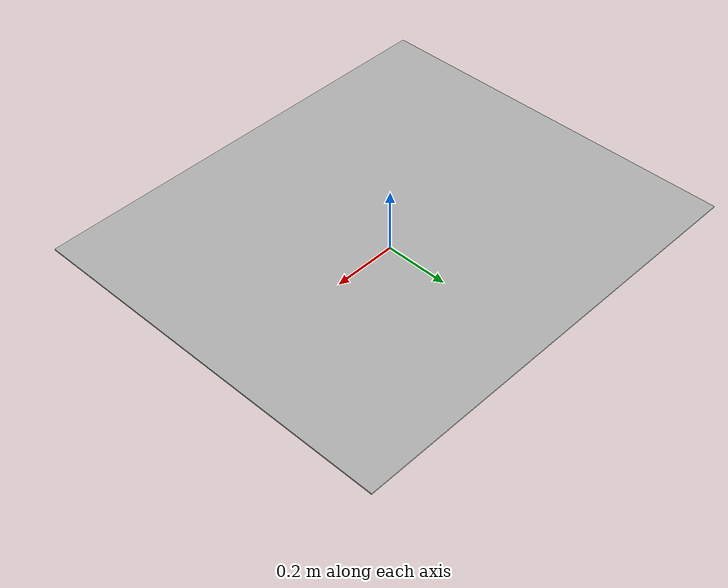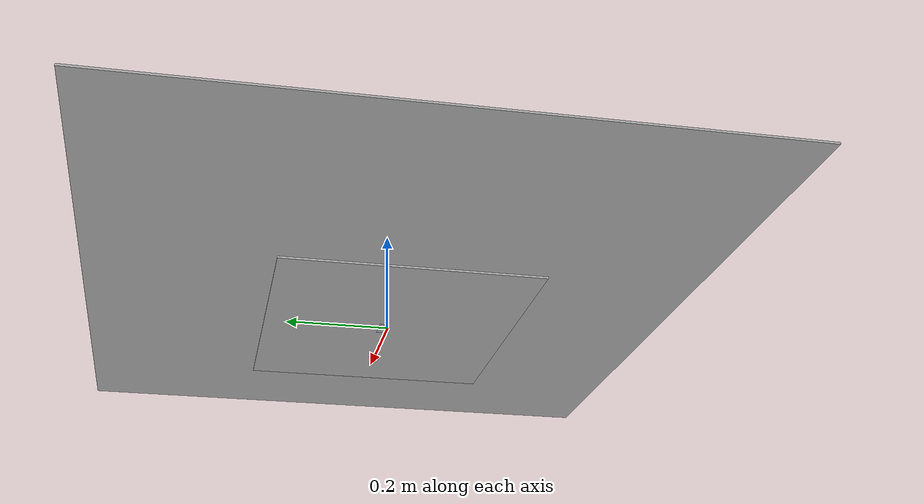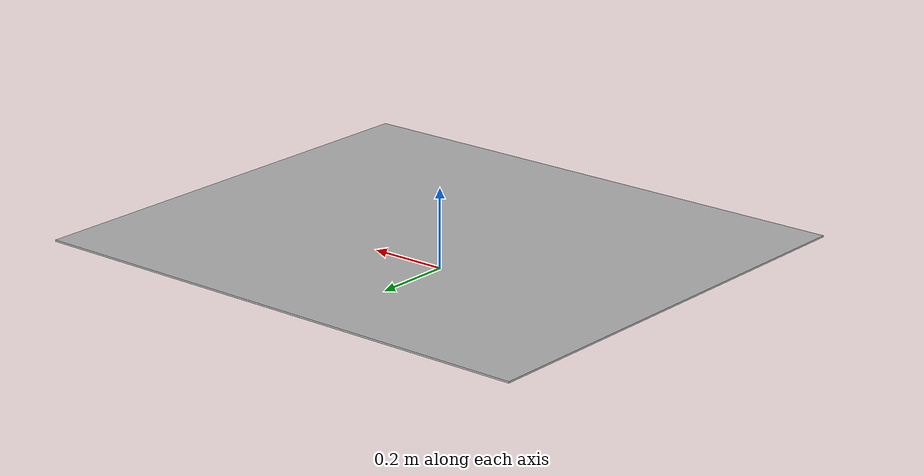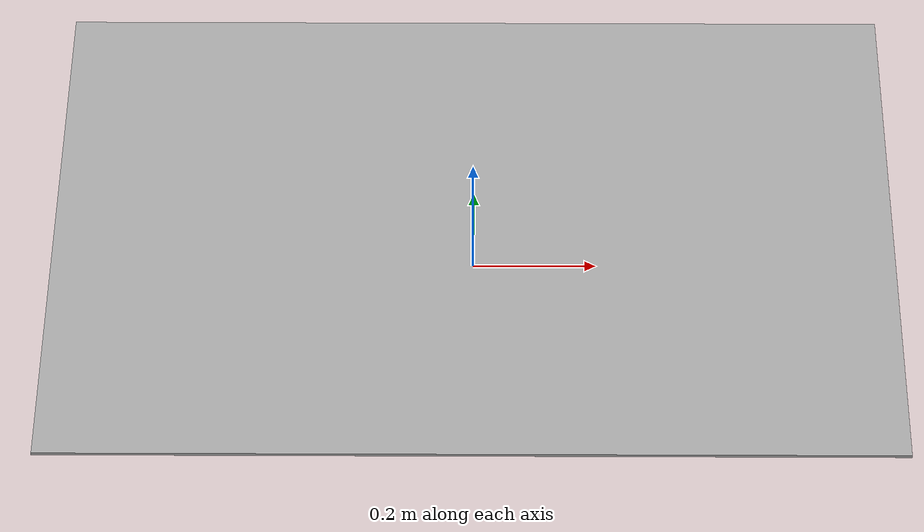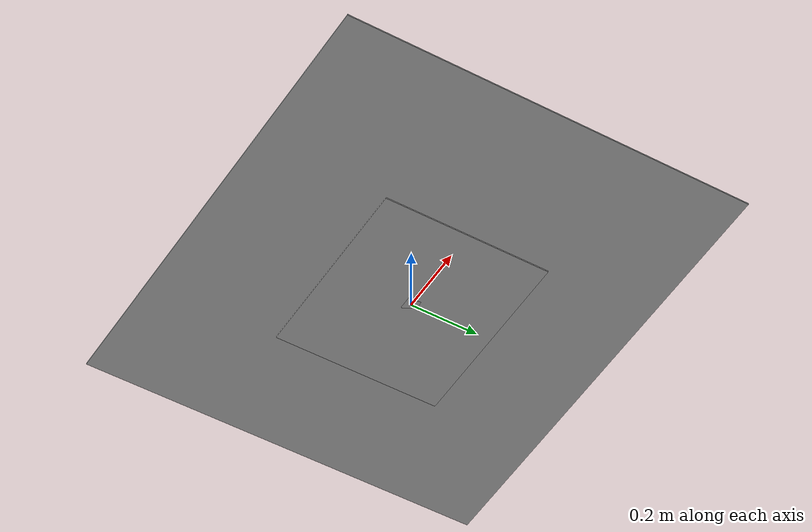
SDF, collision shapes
<?xml version="1.0" ?>
<sdf version="1.5">
  <model name="cafe_table">
    <static>true</static>
    <link name="link">
      <collision name="surface">
        <pose>0 0 0.0755 0 0 0</pose>
        <geometry>
          <box>
            <size>1.3695 1.1869 0.004</size>
          </box>
        </geometry>
      </collision>

      <collision name="column">
        <pose>0 0 0.037 0 0 0</pose>
        <geometry>
          <box>
            <size>0.042 0.0364 0.074</size>
          </box>
        </geometry>
      </collision>

      <collision name="base">
        <pose>0 0 0.002 0 0 0</pose>
        <geometry>
          <box>
            <size>0.56 0.4853 0.004</size>
          </box>
        </geometry>
      </collision>

      <visual name="visual">
        <geometry>
          <mesh>
            <uri>model://cafe_table/meshes/cafe_table.dae</uri>
            <scale>1.5 1.3 0.1</scale>
          </mesh>
        </geometry>
      </visual>
    </link>
  </model>
</sdf>
